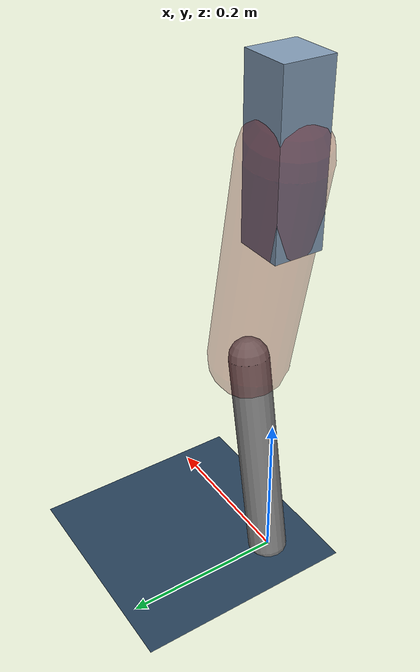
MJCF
<mujoco model="Hopper2D">
	<compiler inertiafromgeom="true" angle="radian" />
	<option timestep="0.001" integrator="implicit" cone="elliptic" solver="Newton" tolerance="1e-10" />

	<default>
		<geom contype="1" conaffinity="1" condim="3" friction="2 0.005 0.0001" solref="0.005 1" />
		<joint limited="true" damping="0.1" />
	</default>

	<asset>
		<texture name="skybox" type="skybox" builtin="gradient" rgb1=".4 .6 .8" rgb2="0 0 0" width="800" height="800" />
		<texture name="grid" type="2d" builtin="checker" rgb1=".1 .2 .3" rgb2=".2 .3 .4" width="300" height="300" mark="edge" markrgb=".2 .3 .4" />
		<material name="ground" texture="grid" texrepeat="1 1" texuniform="true" reflectance="0.1" />
		<material name="leg" rgba="0.5 0.6 0.7 1" />
	</asset>

	<worldbody>

		<geom name="floor" type="plane" size="5 5 0.25" material="ground" />

		<light directional="false" diffuse="0.8 0.8 0.8" specular="0.3 0.3 0.3" pos="0 0 2" dir="0 0 -1" />
		<light mode="targetbodycom" target="base" directional="false" diffuse="0.8 0.8 0.8" specular="0.3 0.3 0.3" pos="0 0 2" dir="0 0 -1" />

		<camera name="fixed" pos="0 -2 1" xyaxes="1 0 0 0 0 1" />
		<camera name="tracking" mode="trackcom" pos="0 -3 1" />

		<body name="root" pos="0 0 0.5448352466649417">
			<joint name="slide_x" type="slide" axis="1 0 0" range="-100 100" />
			<joint name="slide_z" type="slide" axis="0 0 1" range="0 10" />

			<body name="base" pos="0 0 0">
				<geom name="torso" type="box" size="0.03 0.03 0.1" mass="3.769" material="leg" />

				<body name="link1" pos="0 0 0" euler="0 1.3807601368984 0">
					<joint type="hinge" axis="0 -1 0" pos="0 0 0" name="hinge1" limited="true" range="-3.14 3.14" stiffness="0" damping="0.1" />
					<geom name="thigh" type="capsule" fromto="0 0 0 0.2775760919718493 0 0" size="0.05" rgba="0.5 0 0 0.3" mass="0.928697839126808" />

					<body name="link2" pos="0.2775760919718493 0 0" euler="0 0.38029226977331193 0">
						<joint type="hinge" axis="0 -1 0" pos="0 0 0" name="hinge2" limited="true" range="-3.14 3.14" stiffness="0" damping="0.1" />
						<geom name="shank" type="capsule" fromto="0 0 0 0.27725915469309237 0 0" size="0.025" mass="0.4649073237544739" />

					</body>
				</body>
			</body>
		</body>
	</worldbody>

	<actuator>
		<motor name="torque1" joint="hinge1" ctrlrange="-223.0140243394579 223.0140243394579" ctrllimited="true" gear="1" />
		<motor name="torque2" joint="hinge2" ctrlrange="-119.0568287484318 119.0568287484318" ctrllimited="true" gear="1" />
	</actuator>
</mujoco>
